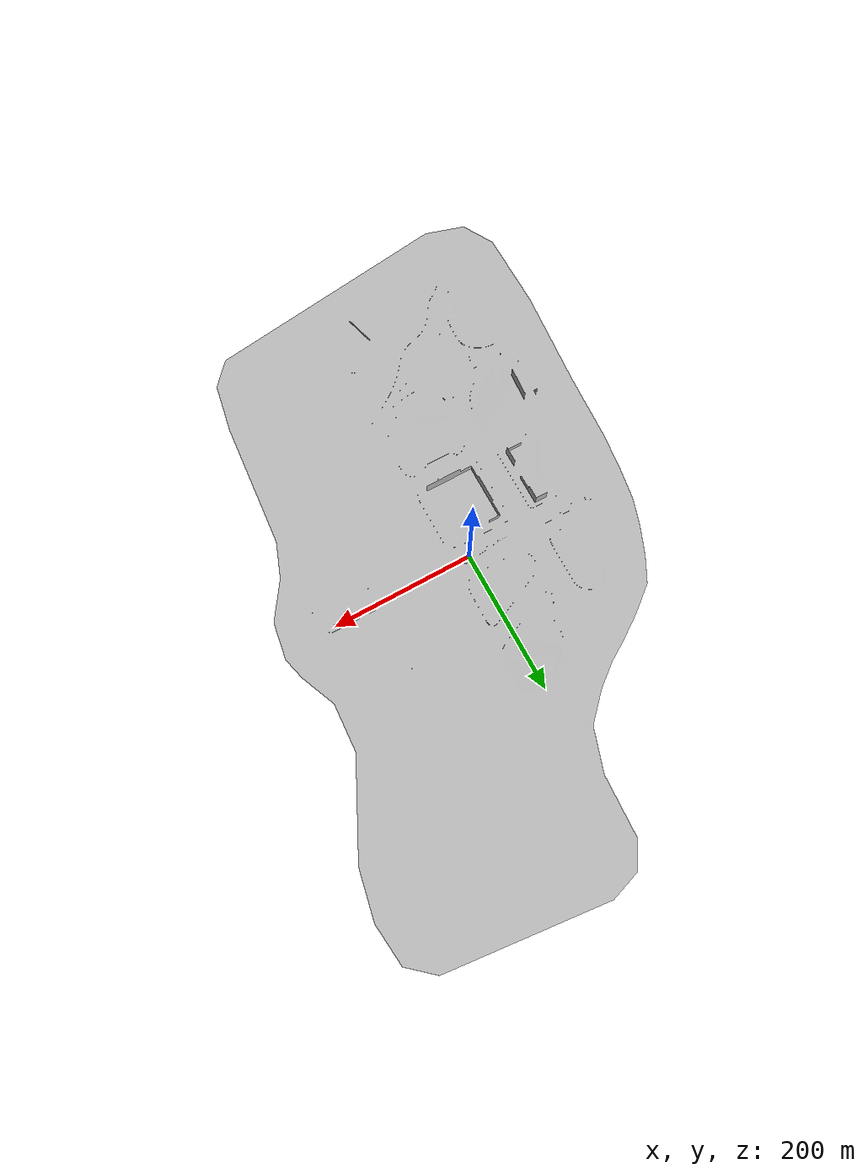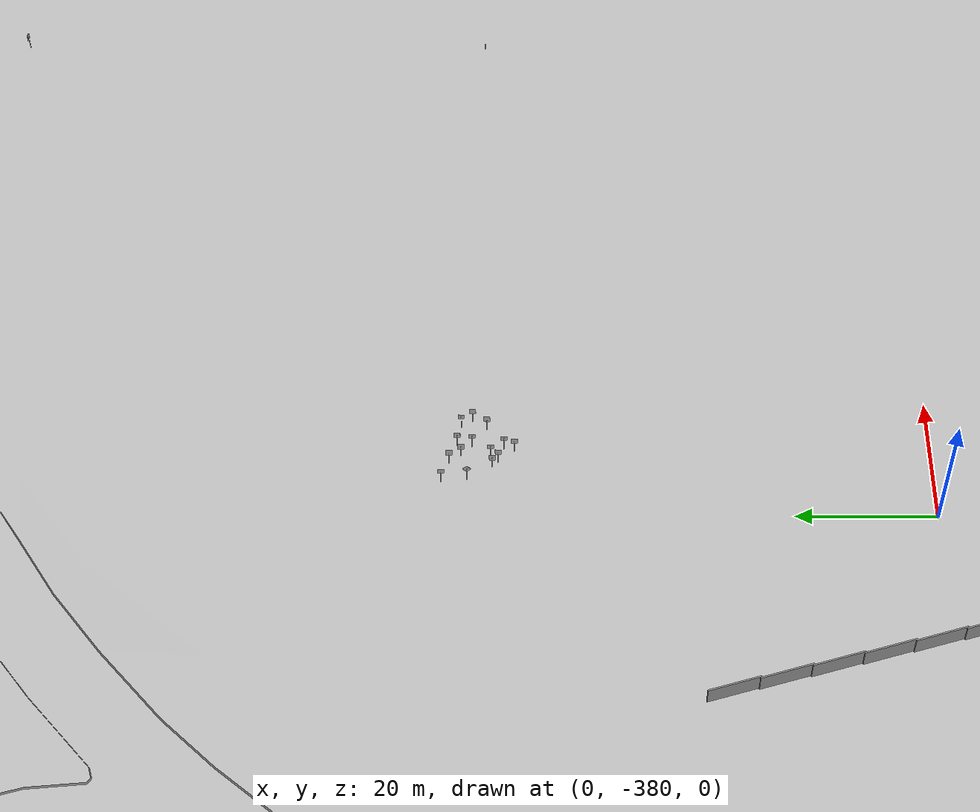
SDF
<sdf version="1.6">
 <world name="default">
  <light name="sun" type="directional">
   <pose>0 0 10 0 -0 0</pose>
   <diffuse>0.8 0.8 0.8 1</diffuse>
   <specular>0.2 0.2 0.2 1</specular>
   <attenuation>
    <range>1000</range>
    <constant>0.9</constant>
    <linear>0.01</linear>
    <quadratic>0.001</quadratic>
   </attenuation>
   <direction>-0.5 0.1 -0.9</direction>
  </light>
  <model name="cafe">
   <pose>0.038313 -0.078421 0 0 -0 0</pose>
   <static>1</static>
   <link name="link">
    <collision name="collision">
     <geometry><mesh><scale>0.254 0.254 0.254</scale><uri>model://mcity/meshes/mcity.obj</uri></mesh></geometry>
    </collision>
    <visual name="visual">
     <geometry><mesh><scale>0.254 0.254 0.254</scale><uri>model://mcity/meshes/mcity.obj</uri></mesh></geometry>
    </visual>
   </link>
  </model>
  <gravity>0 0 -9.8</gravity>
  <magnetic_field>6e-06 2.3e-05 -4.2e-05</magnetic_field>
  <atmosphere type="adiabatic"/>
  <physics name="default_physics" default="0" type="ode">
   <max_step_size>0.001</max_step_size>
   <real_time_factor>1</real_time_factor>
   <real_time_update_rate>1000</real_time_update_rate>
  </physics>
  <scene><ambient>0.4 0.4 0.4 1</ambient><background>0.7 0.7 0.7 1</background><shadows>1</shadows></scene>
  <audio><device>default</device></audio>
  <spherical_coordinates>
   <surface_model>EARTH_WGS84</surface_model>
   <latitude_deg>0</latitude_deg>
   <longitude_deg>0</longitude_deg>
   <elevation>0</elevation>
   <heading_deg>0</heading_deg>
  </spherical_coordinates>
  <model name="grey_wall">
   <static>1</static>
   <link name="link">
    <pose>0 0 1.4 0 -0 0</pose>
    <collision name="collision"><geometry><box><size>7.5 0.2 2.8</size></box></geometry></collision>
    <visual name="visual">
     <cast_shadows>0</cast_shadows>
     <geometry><box><size>7.5 0.2 2.8</size></box></geometry>
     <material>
      <script>
       <uri>model://grey_wall/materials/scripts</uri>
       <uri>model://grey_wall/materials/textures</uri>
       <name>vrc/grey_wall</name>
      </script>
     </material>
    </visual>
   </link>
   <pose>-29 -350 0 0 -0 1.87601</pose>
  </model>
  <model name="grey_wall_clone">
   <static>1</static>
   <link name="link">
    <pose>0 0 1.4 0 -0 0</pose>
    <collision name="collision"><geometry><box><size>7.5 0.2 2.8</size></box></geometry></collision>
    <visual name="visual">
     <cast_shadows>0</cast_shadows>
     <geometry><box><size>7.5 0.2 2.8</size></box></geometry>
     <material>
      <script>
       <uri>model://grey_wall/materials/scripts</uri>
       <uri>model://grey_wall/materials/textures</uri>
       <name>vrc/grey_wall</name>
      </script>
     </material>
    </visual>
   </link>
   <pose>-27 -357 0 0 -0 1.87601</pose>
  </model>
  <model name="grey_wall_clone_0">
   <static>1</static>
   <link name="link">
    <pose>0 0 1.4 0 -0 0</pose>
    <collision name="collision"><geometry><box><size>7.5 0.2 2.8</size></box></geometry></collision>
    <visual name="visual">
     <cast_shadows>0</cast_shadows>
     <geometry><box><size>7.5 0.2 2.8</size></box></geometry>
     <material>
      <script>
       <uri>model://grey_wall/materials/scripts</uri>
       <uri>model://grey_wall/materials/textures</uri>
       <name>vrc/grey_wall</name>
      </script>
     </material>
    </visual>
   </link>
   <pose>-25 -364 0 0 -0 1.87601</pose>
  </model>
  <model name="grey_wall_clone_0_clone">
   <static>1</static>
   <link name="link">
    <pose>0 0 1.4 0 -0 0</pose>
    <collision name="collision"><geometry><box><size>7.5 0.2 2.8</size></box></geometry></collision>
    <visual name="visual">
     <cast_shadows>0</cast_shadows>
     <geometry><box><size>7.5 0.2 2.8</size></box></geometry>
     <material>
      <script>
       <uri>model://grey_wall/materials/scripts</uri>
       <uri>model://grey_wall/materials/textures</uri>
       <name>vrc/grey_wall</name>
      </script>
     </material>
    </visual>
   </link>
   <pose>-23 -371 0 0 -0 1.87601</pose>
  </model>
  <model name="grey_wall_clone_0_clone_clone">
   <static>1</static>
   <link name="link">
    <pose>0 0 1.4 0 -0 0</pose>
    <collision name="collision"><geometry><box><size>7.5 0.2 2.8</size></box></geometry></collision>
    <visual name="visual">
     <cast_shadows>0</cast_shadows>
     <geometry><box><size>7.5 0.2 2.8</size></box></geometry>
     <material>
      <script>
       <uri>model://grey_wall/materials/scripts</uri>
       <uri>model://grey_wall/materials/textures</uri>
       <name>vrc/grey_wall</name>
      </script>
     </material>
    </visual>
   </link>
   <pose>-21 -378 0 0 -0 1.87601</pose>
  </model>
  <model name="grey_wall_clone_0_clone_clone_clone">
   <static>1</static>
   <link name="link">
    <pose>0 0 1.4 0 -0 0</pose>
    <collision name="collision"><geometry><box><size>7.5 0.2 2.8</size></box></geometry></collision>
    <visual name="visual">
     <cast_shadows>0</cast_shadows>
     <geometry><box><size>7.5 0.2 2.8</size></box></geometry>
     <material>
      <script>
       <uri>model://grey_wall/materials/scripts</uri>
       <uri>model://grey_wall/materials/textures</uri>
       <name>vrc/grey_wall</name>
      </script>
     </material>
    </visual>
   </link>
   <pose>-19 -385 0 0 -0 1.87601</pose>
  </model>
  <model name="speed_10">
   <static>1</static>
   <link name="link">
    <collision name="collision">
     <geometry><mesh><scale>1 1 1</scale><uri>model://speed_10/meshes/speedlim_10.dae</uri></mesh></geometry>
    </collision>
    <visual name="visual">
     <geometry><mesh><scale>1 1 1</scale><uri>model://speed_10/meshes/speedlim_10.dae</uri></mesh></geometry>
    </visual>
   </link>
   <pose>16.3651 -314.509 0 0 -0 0</pose>
  </model>
  <model name="speed_15">
   <static>1</static>
   <link name="link">
    <collision name="collision">
     <geometry><mesh><scale>1 1 1</scale><uri>model://speed_15/meshes/speedlim_15.dae</uri></mesh></geometry>
    </collision>
    <visual name="visual">
     <geometry><mesh><scale>1 1 1</scale><uri>model://speed_15/meshes/speedlim_15.dae</uri></mesh></geometry>
    </visual>
   </link>
   <pose>15 -316.574 0 0 -0 0</pose>
  </model>
  <model name="speed_20">
   <static>1</static>
   <link name="link">
    <collision name="collision">
     <geometry><mesh><scale>1 1 1</scale><uri>model://speed_20/meshes/speedlim_20.dae</uri></mesh></geometry>
    </collision>
    <visual name="visual">
     <geometry><mesh><scale>1 1 1</scale><uri>model://speed_20/meshes/speedlim_20.dae</uri></mesh></geometry>
    </visual>
   </link>
   <pose>9 -318.347 0 0 -0 0</pose>
  </model>
  <model name="speed_25">
   <static>1</static>
   <link name="link">
    <collision name="collision">
     <geometry><mesh><scale>1 1 1</scale><uri>model://speed_25/meshes/speedlim_25.dae</uri></mesh></geometry>
    </collision>
    <visual name="visual">
     <geometry><mesh><scale>1 1 1</scale><uri>model://speed_25/meshes/speedlim_25.dae</uri></mesh></geometry>
    </visual>
   </link>
   <pose>8 -317.523 0 0 -0 0</pose>
  </model>
  <model name="stop">
   <static>1</static>
   <link name="link">
    <collision name="collision">
     <geometry><mesh><scale>1 1 1</scale><uri>model://stop/meshes/stop.dae</uri></mesh></geometry>
    </collision>
    <visual name="visual">
     <geometry><mesh><scale>1 1 1</scale><uri>model://stop/meshes/stop.dae</uri></mesh></geometry>
    </visual>
   </link>
   <pose>15.3575 -312.919 0 0 -0 0</pose>
  </model>
  <model name="yield">
   <static>1</static>
   <link name="link">
    <collision name="collision">
     <geometry><mesh><scale>1 1 1</scale><uri>model://yield/meshes/yield.dae</uri></mesh></geometry>
    </collision>
    <visual name="visual">
     <geometry><mesh><scale>1 1 1</scale><uri>model://yield/meshes/yield.dae</uri></mesh></geometry>
    </visual>
   </link>
   <pose>11.8551 -314.525 0 0 -0 0</pose>
  </model>
  <model name="pedestrain_walk">
   <static>1</static>
   <link name="link">
    <collision name="collision">
     <geometry>
      <mesh><scale>1 1 1</scale><uri>model://pedestrain_walk/meshes/pedestrain_walk.dae</uri></mesh>
     </geometry>
    </collision>
    <visual name="visual">
     <geometry>
      <mesh><scale>1 1 1</scale><uri>model://pedestrain_walk/meshes/pedestrain_walk.dae</uri></mesh>
     </geometry>
    </visual>
   </link>
   <pose>6 -313.945 0 0 -0 0</pose>
  </model>
  <model name="parking">
   <static>1</static>
   <link name="link">
    <collision name="collision">
     <geometry><mesh><scale>1 1 1</scale><uri>model://parking/meshes/parking.dae</uri></mesh></geometry>
    </collision>
    <visual name="visual">
     <geometry><mesh><scale>1 1 1</scale><uri>model://parking/meshes/parking.dae</uri></mesh></geometry>
    </visual>
   </link>
   <pose>10 -317.244 0 0 -0 0</pose>
  </model>
  <model name="no_parking">
   <static>1</static>
   <link name="link">
    <collision name="collision">
     <geometry><mesh><scale>1 1 1</scale><uri>model://no_parking/meshes/no_parking.dae</uri></mesh></geometry>
    </collision>
    <visual name="visual">
     <geometry><mesh><scale>1 1 1</scale><uri>model://no_parking/meshes/no_parking.dae</uri></mesh></geometry>
    </visual>
   </link>
   <pose>11 -320.613 0 0 -0 0</pose>
  </model>
  <model name="right_turn_only">
   <static>1</static>
   <link name="link">
    <collision name="collision">
     <geometry>
      <mesh><scale>1 1 1</scale><uri>model://right_turn_only/meshes/right_turn_only.dae</uri></mesh>
     </geometry>
    </collision>
    <visual name="visual">
     <geometry>
      <mesh><scale>1 1 1</scale><uri>model://right_turn_only/meshes/right_turn_only.dae</uri></mesh>
     </geometry>
    </visual>
   </link>
   <pose>8.85113 -311.338 0 0 -0 0</pose>
  </model>
  <model name="left_turn_only">
   <static>1</static>
   <link name="link">
    <collision name="collision">
     <geometry>
      <mesh><scale>1 1 1</scale><uri>model://left_turn_only/meshes/left_turn_only.dae</uri></mesh>
     </geometry>
    </collision>
    <visual name="visual">
     <geometry>
      <mesh><scale>1 1 1</scale><uri>model://left_turn_only/meshes/left_turn_only.dae</uri></mesh>
     </geometry>
    </visual>
   </link>
   <pose>9.95826 -313.03 0 0 -0 0</pose>
  </model>
  <model name="gas_station_sign">
   <static>1</static>
   <link name="link">
    <collision name="collision">
     <geometry>
      <mesh><scale>1 1 1</scale><uri>model://gas_station_sign/meshes/gas_station_sign.dae</uri></mesh>
     </geometry>
    </collision>
    <visual name="visual">
     <geometry>
      <mesh><scale>1 1 1</scale><uri>model://gas_station_sign/meshes/gas_station_sign.dae</uri></mesh>
     </geometry>
    </visual>
   </link>
   <pose>12.0199 -312.397 0 0 -0 0</pose>
  </model>
  <model name="do_not_enter">
   <static>1</static>
   <link name="link">
    <collision name="collision">
     <geometry><mesh><scale>1 1 1</scale><uri>model://do_not_enter/meshes/do_not_enter.dae</uri></mesh></geometry>
    </collision>
    <visual name="visual">
     <geometry><mesh><scale>1 1 1</scale><uri>model://do_not_enter/meshes/do_not_enter.dae</uri></mesh></geometry>
    </visual>
   </link>
   <pose>5.52846 -310.301 0 0 -0 0</pose>
  </model>
  <model name="disabled_parking">
   <static>1</static>
   <link name="link">
    <collision name="collision">
     <geometry>
      <mesh><scale>1 1 1</scale><uri>model://disabled_parking/meshes/disabled_parking.dae</uri></mesh>
     </geometry>
    </collision>
    <visual name="visual">
     <geometry>
      <mesh><scale>1 1 1</scale><uri>model://disabled_parking/meshes/disabled_parking.dae</uri></mesh>
     </geometry>
    </visual>
   </link>
   <pose>11.4731 -319.106 0 0 -0 0</pose>
  </model>
  <model name="speed_20_clone">
   <static>1</static>
   <link name="link">
    <collision name="collision">
     <geometry><mesh><scale>1 1 1</scale><uri>model://speed_20/meshes/speedlim_20.dae</uri></mesh></geometry>
    </collision>
    <visual name="visual">
     <geometry><mesh><scale>1 1 1</scale><uri>model://speed_20/meshes/speedlim_20.dae</uri></mesh></geometry>
    </visual>
   </link>
   <pose>138.704 -25.0728 -0.003717 0.003542 -0.07679 -1.61694</pose>
  </model>
  <model name="do_not_enter_clone">
   <static>1</static>
   <link name="link">
    <collision name="collision">
     <geometry><mesh><scale>1 1 1</scale><uri>model://do_not_enter/meshes/do_not_enter.dae</uri></mesh></geometry>
    </collision>
    <visual name="visual">
     <geometry><mesh><scale>1 1 1</scale><uri>model://do_not_enter/meshes/do_not_enter.dae</uri></mesh></geometry>
    </visual>
   </link>
   <pose>2.61951 -247.104 0 0 -0 0.58137</pose>
  </model>
  <model name="right_turn_only_clone">
   <static>1</static>
   <link name="link">
    <collision name="collision">
     <geometry>
      <mesh><scale>1 1 1</scale><uri>model://right_turn_only/meshes/right_turn_only.dae</uri></mesh>
     </geometry>
    </collision>
    <visual name="visual">
     <geometry>
      <mesh><scale>1 1 1</scale><uri>model://right_turn_only/meshes/right_turn_only.dae</uri></mesh>
     </geometry>
    </visual>
   </link>
   <pose>-49.3964 -232.327 0 0 -0 0</pose>
  </model>
  <model name="pedestrain_walk_clone">
   <static>1</static>
   <link name="link">
    <collision name="collision">
     <geometry>
      <mesh><scale>1 1 1</scale><uri>model://pedestrain_walk/meshes/pedestrain_walk.dae</uri></mesh>
     </geometry>
    </collision>
    <visual name="visual">
     <geometry>
      <mesh><scale>1 1 1</scale><uri>model://pedestrain_walk/meshes/pedestrain_walk.dae</uri></mesh>
     </geometry>
    </visual>
   </link>
   <pose>-63.9132 -217.257 0 0 0 -1.27558</pose>
  </model>
  <model name="pedestrain_walk_clone_0">
   <static>1</static>
   <link name="link">
    <collision name="collision">
     <geometry>
      <mesh><scale>1 1 1</scale><uri>model://pedestrain_walk/meshes/pedestrain_walk.dae</uri></mesh>
     </geometry>
    </collision>
    <visual name="visual">
     <geometry>
      <mesh><scale>1 1 1</scale><uri>model://pedestrain_walk/meshes/pedestrain_walk.dae</uri></mesh>
     </geometry>
    </visual>
   </link>
   <pose>-106.211 -186.474 0 0 -0 1.33811</pose>
  </model>
  <model name="pedestrain_walk_clone_1">
   <static>1</static>
   <link name="link">
    <collision name="collision">
     <geometry>
      <mesh><scale>1 1 1</scale><uri>model://pedestrain_walk/meshes/pedestrain_walk.dae</uri></mesh>
     </geometry>
    </collision>
    <visual name="visual">
     <geometry>
      <mesh><scale>1 1 1</scale><uri>model://pedestrain_walk/meshes/pedestrain_walk.dae</uri></mesh>
     </geometry>
    </visual>
   </link>
   <pose>26.1097 -231.394 0 0 0 -2.21802</pose>
  </model>
  <model name="pedestrain_walk_clone_2">
   <static>1</static>
   <link name="link">
    <collision name="collision">
     <geometry>
      <mesh><scale>1 1 1</scale><uri>model://pedestrain_walk/meshes/pedestrain_walk.dae</uri></mesh>
     </geometry>
    </collision>
    <visual name="visual">
     <geometry>
      <mesh><scale>1 1 1</scale><uri>model://pedestrain_walk/meshes/pedestrain_walk.dae</uri></mesh>
     </geometry>
    </visual>
   </link>
   <pose>15.2697 -204.239 0 0 -0 0.947326</pose>
  </model>
  <model name="right_turn_only_clone_1">
   <static>1</static>
   <link name="link">
    <collision name="collision">
     <geometry>
      <mesh><scale>1 1 1</scale><uri>model://right_turn_only/meshes/right_turn_only.dae</uri></mesh>
     </geometry>
    </collision>
    <visual name="visual">
     <geometry>
      <mesh><scale>1 1 1</scale><uri>model://right_turn_only/meshes/right_turn_only.dae</uri></mesh>
     </geometry>
    </visual>
   </link>
   <pose>13.1429 -136.452 0 0 -0 3.07373</pose>
  </model>
  <model name="left_turn_only_clone">
   <static>1</static>
   <link name="link">
    <collision name="collision">
     <geometry>
      <mesh><scale>1 1 1</scale><uri>model://left_turn_only/meshes/left_turn_only.dae</uri></mesh>
     </geometry>
    </collision>
    <visual name="visual">
     <geometry>
      <mesh><scale>1 1 1</scale><uri>model://left_turn_only/meshes/left_turn_only.dae</uri></mesh>
     </geometry>
    </visual>
   </link>
   <pose>-105.194 -111.726 0 0 -0 1.56016</pose>
  </model>
  <model name="right_turn_only_clone_2">
   <static>1</static>
   <link name="link">
    <collision name="collision">
     <geometry>
      <mesh><scale>1 1 1</scale><uri>model://right_turn_only/meshes/right_turn_only.dae</uri></mesh>
     </geometry>
    </collision>
    <visual name="visual">
     <geometry>
      <mesh><scale>1 1 1</scale><uri>model://right_turn_only/meshes/right_turn_only.dae</uri></mesh>
     </geometry>
    </visual>
   </link>
   <pose>-118.173 -19.9532 0 0 -0 3.13054</pose>
  </model>
  <model name="right_turn_only_clone_3">
   <static>1</static>
   <link name="link">
    <collision name="collision">
     <geometry>
      <mesh><scale>1 1 1</scale><uri>model://right_turn_only/meshes/right_turn_only.dae</uri></mesh>
     </geometry>
    </collision>
    <visual name="visual">
     <geometry>
      <mesh><scale>1 1 1</scale><uri>model://right_turn_only/meshes/right_turn_only.dae</uri></mesh>
     </geometry>
    </visual>
   </link>
   <pose>-71.0591 -23.7095 0 0 0 -1.70966</pose>
  </model>
  <model name="left_turn_only_clone_0">
   <static>1</static>
   <link name="link">
    <collision name="collision">
     <geometry>
      <mesh><scale>1 1 1</scale><uri>model://left_turn_only/meshes/left_turn_only.dae</uri></mesh>
     </geometry>
    </collision>
    <visual name="visual">
     <geometry>
      <mesh><scale>1 1 1</scale><uri>model://left_turn_only/meshes/left_turn_only.dae</uri></mesh>
     </geometry>
    </visual>
   </link>
   <pose>-177.298 -0.58583 0 0 -0 1.51381</pose>
  </model>
  <model name="right_turn_only_clone_4">
   <static>1</static>
   <link name="link">
    <collision name="collision">
     <geometry>
      <mesh><scale>1 1 1</scale><uri>model://right_turn_only/meshes/right_turn_only.dae</uri></mesh>
     </geometry>
    </collision>
    <visual name="visual">
     <geometry>
      <mesh><scale>1 1 1</scale><uri>model://right_turn_only/meshes/right_turn_only.dae</uri></mesh>
     </geometry>
    </visual>
   </link>
   <pose>28.8738 216.307 0 0 -0 1.57736</pose>
  </model>
  <model name="left_turn_only_clone_1">
   <static>1</static>
   <link name="link">
    <collision name="collision">
     <geometry>
      <mesh><scale>1 1 1</scale><uri>model://left_turn_only/meshes/left_turn_only.dae</uri></mesh>
     </geometry>
    </collision>
    <visual name="visual">
     <geometry>
      <mesh><scale>1 1 1</scale><uri>model://left_turn_only/meshes/left_turn_only.dae</uri></mesh>
     </geometry>
    </visual>
   </link>
   <pose>-116.673 7.19164 0 0 -0 3.05826</pose>
  </model>
  <model name="disabled_parking_clone">
   <static>1</static>
   <link name="link">
    <collision name="collision">
     <geometry>
      <mesh><scale>1 1 1</scale><uri>model://disabled_parking/meshes/disabled_parking.dae</uri></mesh>
     </geometry>
    </collision>
    <visual name="visual">
     <geometry>
      <mesh><scale>1 1 1</scale><uri>model://disabled_parking/meshes/disabled_parking.dae</uri></mesh>
     </geometry>
    </visual>
   </link>
   <pose>-52.5378 -19.6503 0 0 -0 1.97264</pose>
  </model>
  <model name="parking_clone">
   <static>1</static>
   <link name="link">
    <collision name="collision">
     <geometry><mesh><scale>1 1 1</scale><uri>model://parking/meshes/parking.dae</uri></mesh></geometry>
    </collision>
    <visual name="visual">
     <geometry><mesh><scale>1 1 1</scale><uri>model://parking/meshes/parking.dae</uri></mesh></geometry>
    </visual>
   </link>
   <pose>-41.8213 -19.7691 0 0 -0 2.02162</pose>
  </model>
  <model name="parking_clone_0">
   <static>1</static>
   <link name="link">
    <collision name="collision">
     <geometry><mesh><scale>1 1 1</scale><uri>model://parking/meshes/parking.dae</uri></mesh></geometry>
    </collision>
    <visual name="visual">
     <geometry><mesh><scale>1 1 1</scale><uri>model://parking/meshes/parking.dae</uri></mesh></geometry>
    </visual>
   </link>
   <pose>-31.3363 -19.9482 0 0 -0 2.24615</pose>
  </model>
  <model name="parking_clone_1">
   <static>1</static>
   <link name="link">
    <collision name="collision">
     <geometry><mesh><scale>1 1 1</scale><uri>model://parking/meshes/parking.dae</uri></mesh></geometry>
    </collision>
    <visual name="visual">
     <geometry><mesh><scale>1 1 1</scale><uri>model://parking/meshes/parking.dae</uri></mesh></geometry>
    </visual>
   </link>
   <pose>-22.5647 -20.1733 0 0 -0 2.31822</pose>
  </model>
  <model name="parking_clone_2">
   <static>1</static>
   <link name="link">
    <collision name="collision">
     <geometry><mesh><scale>1 1 1</scale><uri>model://parking/meshes/parking.dae</uri></mesh></geometry>
    </collision>
    <visual name="visual">
     <geometry><mesh><scale>1 1 1</scale><uri>model://parking/meshes/parking.dae</uri></mesh></geometry>
    </visual>
   </link>
   <pose>-14.3255 -19.943 0 0 -0 2.43218</pose>
  </model>
  <model name="disabled_parking_clone_0">
   <static>1</static>
   <link name="link">
    <collision name="collision">
     <geometry>
      <mesh><scale>1 1 1</scale><uri>model://disabled_parking/meshes/disabled_parking.dae</uri></mesh>
     </geometry>
    </collision>
    <visual name="visual">
     <geometry>
      <mesh><scale>1 1 1</scale><uri>model://disabled_parking/meshes/disabled_parking.dae</uri></mesh>
     </geometry>
    </visual>
   </link>
   <pose>-5.23545 -20.1233 0 0 -0 2.29508</pose>
  </model>
  <model name="left_turn_only_clone_2">
   <static>1</static>
   <link name="link">
    <collision name="collision">
     <geometry>
      <mesh><scale>1 1 1</scale><uri>model://left_turn_only/meshes/left_turn_only.dae</uri></mesh>
     </geometry>
    </collision>
    <visual name="visual">
     <geometry>
      <mesh><scale>1 1 1</scale><uri>model://left_turn_only/meshes/left_turn_only.dae</uri></mesh>
     </geometry>
    </visual>
   </link>
   <pose>-53.3552 -1.06942 0 0 -0 0</pose>
  </model>
  <model name="left_turn_only_clone_3">
   <static>1</static>
   <link name="link">
    <collision name="collision">
     <geometry>
      <mesh><scale>1 1 1</scale><uri>model://left_turn_only/meshes/left_turn_only.dae</uri></mesh>
     </geometry>
    </collision>
    <visual name="visual">
     <geometry>
      <mesh><scale>1 1 1</scale><uri>model://left_turn_only/meshes/left_turn_only.dae</uri></mesh>
     </geometry>
    </visual>
   </link>
   <pose>71.6014 -19.9846 0 0 -0 0</pose>
  </model>
  <model name="speed_10_clone">
   <static>1</static>
   <link name="link">
    <collision name="collision">
     <geometry><mesh><scale>1 1 1</scale><uri>model://speed_10/meshes/speedlim_10.dae</uri></mesh></geometry>
    </collision>
    <visual name="visual">
     <geometry><mesh><scale>1 1 1</scale><uri>model://speed_10/meshes/speedlim_10.dae</uri></mesh></geometry>
    </visual>
   </link>
   <pose>22.2362 -154.73 0 0 -0 1.58279</pose>
  </model>
  <model name="speed_15_clone_0">
   <static>1</static>
   <link name="link">
    <collision name="collision">
     <geometry><mesh><scale>1 1 1</scale><uri>model://speed_15/meshes/speedlim_15.dae</uri></mesh></geometry>
    </collision>
    <visual name="visual">
     <geometry><mesh><scale>1 1 1</scale><uri>model://speed_15/meshes/speedlim_15.dae</uri></mesh></geometry>
    </visual>
   </link>
   <pose>19.9355 -71.5133 0 0 -0 1.52793</pose>
  </model>
  <model name="right_turn_only_clone_clone">
   <static>1</static>
   <link name="link">
    <collision name="collision">
     <geometry>
      <mesh><scale>1 1 1</scale><uri>model://right_turn_only/meshes/right_turn_only.dae</uri></mesh>
     </geometry>
    </collision>
    <visual name="visual">
     <geometry>
      <mesh><scale>1 1 1</scale><uri>model://right_turn_only/meshes/right_turn_only.dae</uri></mesh>
     </geometry>
    </visual>
   </link>
   <pose>72.4478 23.7977 0 0 -0 0</pose>
  </model>
  <model name="speed_25_clone">
   <static>1</static>
   <link name="link">
    <collision name="collision">
     <geometry><mesh><scale>1 1 1</scale><uri>model://speed_25/meshes/speedlim_25.dae</uri></mesh></geometry>
    </collision>
    <visual name="visual">
     <geometry><mesh><scale>1 1 1</scale><uri>model://speed_25/meshes/speedlim_25.dae</uri></mesh></geometry>
    </visual>
   </link>
   <pose>128.12 -291.74 0 0 0 -1.64596</pose>
  </model>
  <model name="speed_20_clone">
   <static>1</static>
   <link name="link">
    <collision name="collision">
     <geometry><mesh><scale>1 1 1</scale><uri>model://speed_20/meshes/speedlim_20.dae</uri></mesh></geometry>
    </collision>
    <visual name="visual">
     <geometry><mesh><scale>1 1 1</scale><uri>model://speed_20/meshes/speedlim_20.dae</uri></mesh></geometry>
    </visual>
   </link>
   <pose>138.704 -25.0728 -0.003717 0.003542 -0.07679 -1.61694</pose>
  </model>
  <model name="speed_20_clone_0">
   <static>1</static>
   <link name="link">
    <collision name="collision">
     <geometry><mesh><scale>1 1 1</scale><uri>model://speed_20/meshes/speedlim_20.dae</uri></mesh></geometry>
    </collision>
    <visual name="visual">
     <geometry><mesh><scale>1 1 1</scale><uri>model://speed_20/meshes/speedlim_20.dae</uri></mesh></geometry>
    </visual>
   </link>
   <pose>137.621 96.4771 0 0 0 -1.63187</pose>
  </model>
  <model name="stop_clone">
   <static>1</static>
   <link name="link">
    <collision name="collision">
     <geometry><mesh><scale>1 1 1</scale><uri>model://stop/meshes/stop.dae</uri></mesh></geometry>
    </collision>
    <visual name="visual">
     <geometry><mesh><scale>1 1 1</scale><uri>model://stop/meshes/stop.dae</uri></mesh></geometry>
    </visual>
   </link>
   <pose>131.173 317.298 0 0 0 -1.57863</pose>
  </model>
  <model name="speed_25_clone_0">
   <static>1</static>
   <link name="link">
    <collision name="collision">
     <geometry><mesh><scale>1 1 1</scale><uri>model://speed_25/meshes/speedlim_25.dae</uri></mesh></geometry>
    </collision>
    <visual name="visual">
     <geometry><mesh><scale>1 1 1</scale><uri>model://speed_25/meshes/speedlim_25.dae</uri></mesh></geometry>
    </visual>
   </link>
   <pose>99.2627 309.814 0 0 -0 1.42965</pose>
  </model>
  <model name="speed_25_clone_1">
   <static>1</static>
   <link name="link">
    <collision name="collision">
     <geometry><mesh><scale>1 1 1</scale><uri>model://speed_25/meshes/speedlim_25.dae</uri></mesh></geometry>
    </collision>
    <visual name="visual">
     <geometry><mesh><scale>1 1 1</scale><uri>model://speed_25/meshes/speedlim_25.dae</uri></mesh></geometry>
    </visual>
   </link>
   <pose>97.9334 166.673 0 0 -0 1.69161</pose>
  </model>
  <model name="stop_clone_0">
   <static>1</static>
   <link name="link">
    <collision name="collision">
     <geometry><mesh><scale>1 1 1</scale><uri>model://stop/meshes/stop.dae</uri></mesh></geometry>
    </collision>
    <visual name="visual">
     <geometry><mesh><scale>1 1 1</scale><uri>model://stop/meshes/stop.dae</uri></mesh></geometry>
    </visual>
   </link>
   <pose>142.626 23.6306 0 0 -0 0</pose>
  </model>
  <model name="speed_25_clone_2">
   <static>1</static>
   <link name="link">
    <collision name="collision">
     <geometry><mesh><scale>1 1 1</scale><uri>model://speed_25/meshes/speedlim_25.dae</uri></mesh></geometry>
    </collision>
    <visual name="visual">
     <geometry><mesh><scale>1 1 1</scale><uri>model://speed_25/meshes/speedlim_25.dae</uri></mesh></geometry>
    </visual>
   </link>
   <pose>97.046 34.9881 0 0 -0 1.52611</pose>
  </model>
  <model name="speed_25_clone_3">
   <static>1</static>
   <link name="link">
    <collision name="collision">
     <geometry><mesh><scale>1 1 1</scale><uri>model://speed_25/meshes/speedlim_25.dae</uri></mesh></geometry>
    </collision>
    <visual name="visual">
     <geometry><mesh><scale>1 1 1</scale><uri>model://speed_25/meshes/speedlim_25.dae</uri></mesh></geometry>
    </visual>
   </link>
   <pose>96.5104 -57.1357 0 0 -0 1.92209</pose>
  </model>
  <model name="stop_clone_1">
   <static>1</static>
   <link name="link">
    <collision name="collision">
     <geometry><mesh><scale>1 1 1</scale><uri>model://stop/meshes/stop.dae</uri></mesh></geometry>
    </collision>
    <visual name="visual">
     <geometry><mesh><scale>1 1 1</scale><uri>model://stop/meshes/stop.dae</uri></mesh></geometry>
    </visual>
   </link>
   <pose>94.2599 -314.743 0 0 -0 1.60627</pose>
  </model>
  <model name="yield_clone">
   <static>1</static>
   <link name="link">
    <collision name="collision">
     <geometry><mesh><scale>1 1 1</scale><uri>model://yield/meshes/yield.dae</uri></mesh></geometry>
    </collision>
    <visual name="visual">
     <geometry><mesh><scale>1 1 1</scale><uri>model://yield/meshes/yield.dae</uri></mesh></geometry>
    </visual>
   </link>
   <pose>142.904 -161.978 0 0 0 -1.5877</pose>
  </model>
  <model name="yield_clone_0">
   <static>1</static>
   <link name="link">
    <collision name="collision">
     <geometry><mesh><scale>1 1 1</scale><uri>model://yield/meshes/yield.dae</uri></mesh></geometry>
    </collision>
    <visual name="visual">
     <geometry><mesh><scale>1 1 1</scale><uri>model://yield/meshes/yield.dae</uri></mesh></geometry>
    </visual>
   </link>
   <pose>142.182 94.617 0 0 -0 1.36275</pose>
  </model>
  <model name="stop_clone_4">
   <static>1</static>
   <link name="link">
    <collision name="collision">
     <geometry><mesh><scale>1 1 1</scale><uri>model://stop/meshes/stop.dae</uri></mesh></geometry>
    </collision>
    <visual name="visual">
     <geometry><mesh><scale>1 1 1</scale><uri>model://stop/meshes/stop.dae</uri></mesh></geometry>
    </visual>
   </link>
   <pose>217.695 -30.2795 0 0 0 -1.62504</pose>
  </model>
  <model name="right_turn_only_clone_0">
   <static>1</static>
   <link name="link">
    <collision name="collision">
     <geometry>
      <mesh><scale>1 1 1</scale><uri>model://right_turn_only/meshes/right_turn_only.dae</uri></mesh>
     </geometry>
    </collision>
    <visual name="visual">
     <geometry>
      <mesh><scale>1 1 1</scale><uri>model://right_turn_only/meshes/right_turn_only.dae</uri></mesh>
     </geometry>
    </visual>
   </link>
   <pose>-140.1 28.1404 0 0 -0 0</pose>
  </model>
  <model name="stop_clone_5">
   <static>1</static>
   <link name="link">
    <collision name="collision">
     <geometry><mesh><scale>1 1 1</scale><uri>model://stop/meshes/stop.dae</uri></mesh></geometry>
    </collision>
    <visual name="visual">
     <geometry><mesh><scale>1 1 1</scale><uri>model://stop/meshes/stop.dae</uri></mesh></geometry>
    </visual>
   </link>
   <pose>-156.088 -116.56 0 0 -0 0</pose>
  </model>
  <model name="speed_20_clone_2">
   <static>1</static>
   <link name="link">
    <collision name="collision">
     <geometry><mesh><scale>1 1 1</scale><uri>model://speed_20/meshes/speedlim_20.dae</uri></mesh></geometry>
    </collision>
    <visual name="visual">
     <geometry><mesh><scale>1 1 1</scale><uri>model://speed_20/meshes/speedlim_20.dae</uri></mesh></geometry>
    </visual>
   </link>
   <pose>-181.053 -61.1568 0 0 -0 1.31496</pose>
  </model>
  <model name="speed_20_clone_3">
   <static>1</static>
   <link name="link">
    <collision name="collision">
     <geometry><mesh><scale>1 1 1</scale><uri>model://speed_20/meshes/speedlim_20.dae</uri></mesh></geometry>
    </collision>
    <visual name="visual">
     <geometry><mesh><scale>1 1 1</scale><uri>model://speed_20/meshes/speedlim_20.dae</uri></mesh></geometry>
    </visual>
   </link>
   <pose>-174.614 -136.256 0 0 0 -1.70534</pose>
  </model>
  <model name="speed_15_clone_1">
   <static>1</static>
   <link name="link">
    <collision name="collision">
     <geometry><mesh><scale>1 1 1</scale><uri>model://speed_15/meshes/speedlim_15.dae</uri></mesh></geometry>
    </collision>
    <visual name="visual">
     <geometry><mesh><scale>1 1 1</scale><uri>model://speed_15/meshes/speedlim_15.dae</uri></mesh></geometry>
    </visual>
   </link>
   <pose>-191.035 -134.503 0 0 -0 1.36068</pose>
  </model>
  <model name="speed_15_clone_2">
   <static>1</static>
   <link name="link">
    <collision name="collision">
     <geometry><mesh><scale>1 1 1</scale><uri>model://speed_15/meshes/speedlim_15.dae</uri></mesh></geometry>
    </collision>
    <visual name="visual">
     <geometry><mesh><scale>1 1 1</scale><uri>model://speed_15/meshes/speedlim_15.dae</uri></mesh></geometry>
    </visual>
   </link>
   <pose>-183.024 -244.322 0 0 0 -1.64691</pose>
  </model>
  <model name="speed_20_clone_4">
   <static>1</static>
   <link name="link">
    <collision name="collision">
     <geometry><mesh><scale>1 1 1</scale><uri>model://speed_20/meshes/speedlim_20.dae</uri></mesh></geometry>
    </collision>
    <visual name="visual">
     <geometry><mesh><scale>1 1 1</scale><uri>model://speed_20/meshes/speedlim_20.dae</uri></mesh></geometry>
    </visual>
   </link>
   <pose>-197.569 -217.917 0 0 -0 1.58802</pose>
  </model>
  <model name="stop_clone_6">
   <static>1</static>
   <link name="link">
    <collision name="collision">
     <geometry><mesh><scale>1 1 1</scale><uri>model://stop/meshes/stop.dae</uri></mesh></geometry>
    </collision>
    <visual name="visual">
     <geometry><mesh><scale>1 1 1</scale><uri>model://stop/meshes/stop.dae</uri></mesh></geometry>
    </visual>
   </link>
   <pose>-164.034 -361.03 0 0 -0 0.414646</pose>
  </model>
  <model name="yield_clone_1">
   <static>1</static>
   <link name="link">
    <collision name="collision">
     <geometry><mesh><scale>1 1 1</scale><uri>model://yield/meshes/yield.dae</uri></mesh></geometry>
    </collision>
    <visual name="visual">
     <geometry><mesh><scale>1 1 1</scale><uri>model://yield/meshes/yield.dae</uri></mesh></geometry>
    </visual>
   </link>
   <pose>-117.342 -314.011 0 0 -0 0</pose>
  </model>
  <model name="yield_clone_2">
   <static>1</static>
   <link name="link">
    <collision name="collision">
     <geometry><mesh><scale>1 1 1</scale><uri>model://yield/meshes/yield.dae</uri></mesh></geometry>
    </collision>
    <visual name="visual">
     <geometry><mesh><scale>1 1 1</scale><uri>model://yield/meshes/yield.dae</uri></mesh></geometry>
    </visual>
   </link>
   <pose>-147.784 -273.478 0 0 -0 2.72153</pose>
  </model>
  <model name="yield_clone_3">
   <static>1</static>
   <link name="link">
    <collision name="collision">
     <geometry><mesh><scale>1 1 1</scale><uri>model://yield/meshes/yield.dae</uri></mesh></geometry>
    </collision>
    <visual name="visual">
     <geometry><mesh><scale>1 1 1</scale><uri>model://yield/meshes/yield.dae</uri></mesh></geometry>
    </visual>
   </link>
   <pose>-117.274 -208.655 0 0 -0 1.01276</pose>
  </model>
  <model name="stop_clone_7">
   <static>1</static>
   <link name="link">
    <collision name="collision">
     <geometry><mesh><scale>1 1 1</scale><uri>model://stop/meshes/stop.dae</uri></mesh></geometry>
    </collision>
    <visual name="visual">
     <geometry><mesh><scale>1 1 1</scale><uri>model://stop/meshes/stop.dae</uri></mesh></geometry>
    </visual>
   </link>
   <pose>147.806 -132.577 0 0 -0 0.637861</pose>
  </model>
  <model name="stop_clone_8">
   <static>1</static>
   <link name="link">
    <collision name="collision">
     <geometry><mesh><scale>1 1 1</scale><uri>model://stop/meshes/stop.dae</uri></mesh></geometry>
    </collision>
    <visual name="visual">
     <geometry><mesh><scale>1 1 1</scale><uri>model://stop/meshes/stop.dae</uri></mesh></geometry>
    </visual>
   </link>
   <pose>57.6121 153.536 0 0 -0 0.398427</pose>
  </model>
  <model name="stop_clone_9">
   <static>1</static>
   <link name="link">
    <collision name="collision">
     <geometry><mesh><scale>1 1 1</scale><uri>model://stop/meshes/stop.dae</uri></mesh></geometry>
    </collision>
    <visual name="visual">
     <geometry><mesh><scale>1 1 1</scale><uri>model://stop/meshes/stop.dae</uri></mesh></geometry>
    </visual>
   </link>
   <pose>55.6974 214.71 0 0 -0 0</pose>
  </model>
  <model name="speed_15_clone_3">
   <static>1</static>
   <link name="link">
    <collision name="collision">
     <geometry><mesh><scale>1 1 1</scale><uri>model://speed_15/meshes/speedlim_15.dae</uri></mesh></geometry>
    </collision>
    <visual name="visual">
     <geometry><mesh><scale>1 1 1</scale><uri>model://speed_15/meshes/speedlim_15.dae</uri></mesh></geometry>
    </visual>
   </link>
   <pose>-74.2401 -174.664 0 0 0 -1.53902</pose>
  </model>
  <model name="speed_25_clone_4">
   <static>1</static>
   <link name="link">
    <collision name="collision">
     <geometry><mesh><scale>1 1 1</scale><uri>model://speed_25/meshes/speedlim_25.dae</uri></mesh></geometry>
    </collision>
    <visual name="visual">
     <geometry><mesh><scale>1 1 1</scale><uri>model://speed_25/meshes/speedlim_25.dae</uri></mesh></geometry>
    </visual>
   </link>
   <pose>95.6403 -164.038 0 0 -0 1.35926</pose>
  </model>
  <model name="speed_20_clone_1">
   <static>1</static>
   <link name="link">
    <collision name="collision">
     <geometry><mesh><scale>1 1 1</scale><uri>model://speed_20/meshes/speedlim_20.dae</uri></mesh></geometry>
    </collision>
    <visual name="visual">
     <geometry><mesh><scale>1 1 1</scale><uri>model://speed_20/meshes/speedlim_20.dae</uri></mesh></geometry>
    </visual>
   </link>
   <pose>95.2595 -238.769 0 0 -0 1.42326</pose>
  </model>
  <model name="stop_clone_2">
   <static>1</static>
   <link name="link">
    <collision name="collision">
     <geometry><mesh><scale>1 1 1</scale><uri>model://stop/meshes/stop.dae</uri></mesh></geometry>
    </collision>
    <visual name="visual">
     <geometry><mesh><scale>1 1 1</scale><uri>model://stop/meshes/stop.dae</uri></mesh></geometry>
    </visual>
   </link>
   <pose>-121.558 -134.72 0 0 -0 3.09551</pose>
  </model>
 </world>
</sdf>
